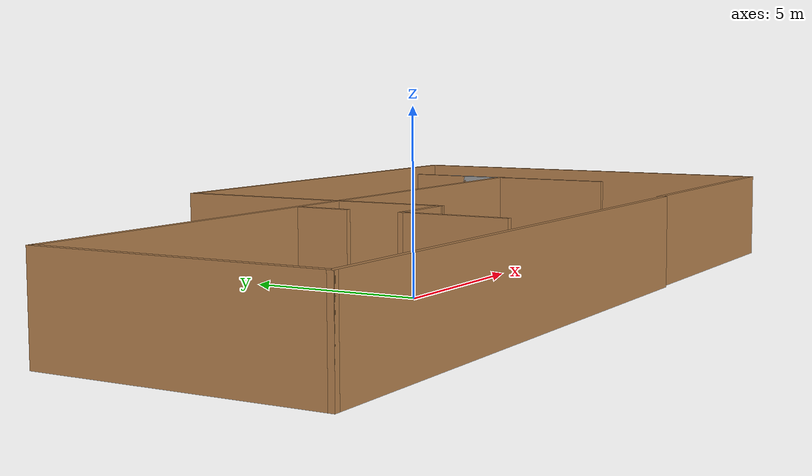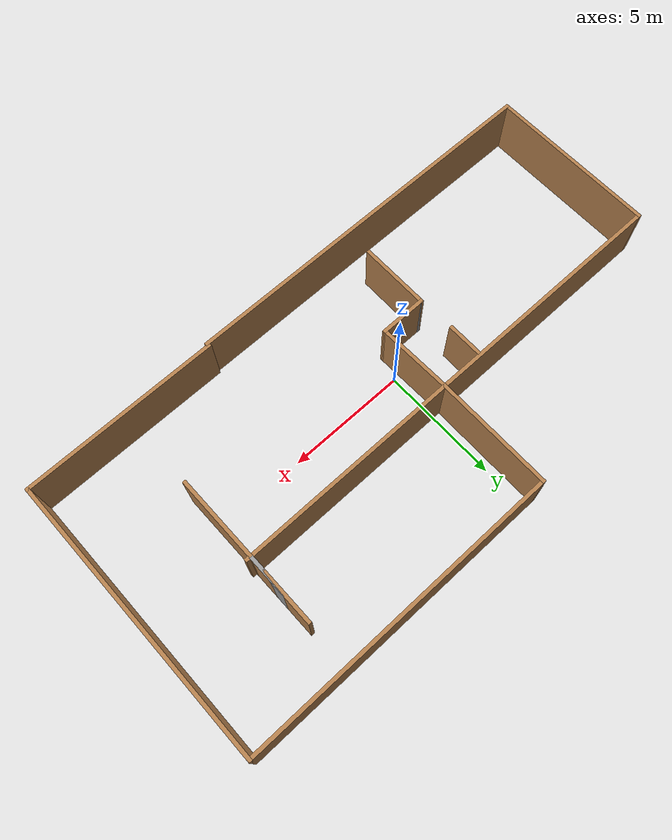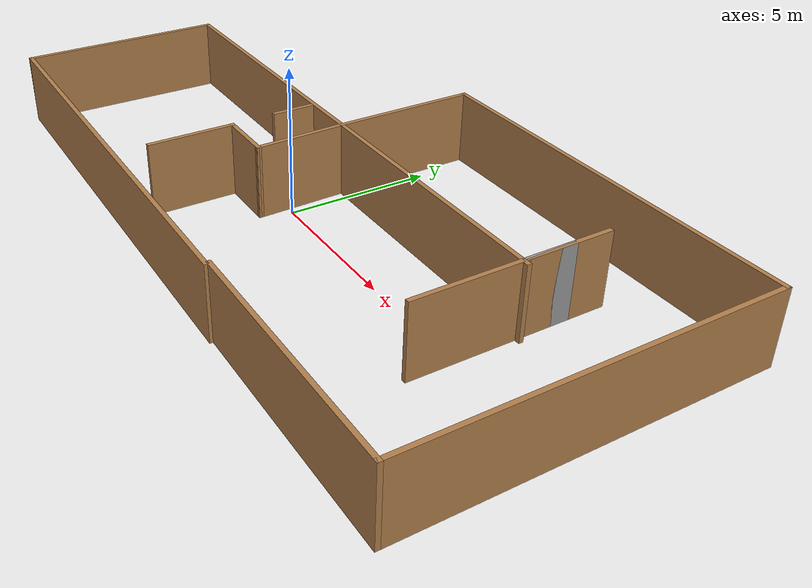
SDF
<?xml version='1.0'?>
<sdf version='1.6'>
  <model name='Hotel'>
    <pose frame=''>0.97585 0.9469 0 0 -0 0</pose>
    <link name='Wall_1'>
      <collision name='Wall_1_Collision'>
        <geometry>
          <box>
            <size>16 0.15 2.5</size>
          </box>
        </geometry>
        <pose frame=''>0 0 1.25 0 -0 0</pose>
      </collision>
      <visual name='Wall_1_Visual'>
        <pose frame=''>0 0 1.25 0 -0 0</pose>
        <geometry>
          <box>
            <size>16 0.15 2.5</size>
          </box>
        </geometry>
        <material>
          <script>
            <uri>file://media/materials/scripts/gazebo.material</uri>
            <name>Gazebo/Wood</name>
          </script>
          <ambient>1 1 1 1</ambient>
        </material>
        <meta>
          <layer>0</layer>
        </meta>
      </visual>
      <pose frame=''>-4.05 -5.975 0 0 -0 0</pose>
    </link>
    <link name='Wall_11'>
      <collision name='Wall_11_Collision'>
        <geometry>
          <box>
            <size>1.5 0.15 2.5</size>
          </box>
        </geometry>
        <pose frame=''>0 0 1.25 0 -0 0</pose>
      </collision>
      <visual name='Wall_11_Visual'>
        <pose frame=''>0 0 1.25 0 -0 0</pose>
        <geometry>
          <box>
            <size>1.5 0.15 2.5</size>
          </box>
        </geometry>
        <material>
          <script>
            <uri>file://media/materials/scripts/gazebo.material</uri>
            <name>Gazebo/Wood</name>
          </script>
          <ambient>1 1 1 1</ambient>
        </material>
        <meta>
          <layer>0</layer>
        </meta>
      </visual>
      <pose frame=''>-3.20587 0.323094 0 0 -0 1.5708</pose>
    </link>
    <link name='Wall_13'>
      <collision name='Wall_13_Collision'>
        <geometry>
          <box>
            <size>2 0.15 2.5</size>
          </box>
        </geometry>
        <pose frame=''>0 0 1.25 0 -0 0</pose>
      </collision>
      <visual name='Wall_13_Visual'>
        <pose frame=''>0 0 1.25 0 -0 0</pose>
        <geometry>
          <box>
            <size>2 0.15 2.5</size>
          </box>
        </geometry>
        <material>
          <script>
            <uri>file://media/materials/scripts/gazebo.material</uri>
            <name>Gazebo/Wood</name>
          </script>
          <ambient>1 1 1 1</ambient>
        </material>
        <meta>
          <layer>0</layer>
        </meta>
      </visual>
      <pose frame=''>-2.21481 -1.925 0 0 -0 0</pose>
    </link>
    <link name='Wall_14'>
      <collision name='Wall_14_Collision'>
        <geometry>
          <box>
            <size>3.20119 0.15 2.5</size>
          </box>
        </geometry>
        <pose frame=''>0 0 1.25 0 -0 0</pose>
      </collision>
      <visual name='Wall_14_Visual'>
        <pose frame=''>0 0 1.25 0 -0 0</pose>
        <geometry>
          <box>
            <size>3.20119 0.15 2.5</size>
          </box>
        </geometry>
        <material>
          <script>
            <uri>file://media/materials/scripts/gazebo.material</uri>
            <name>Gazebo/Wood</name>
          </script>
          <ambient>1 1 1 1</ambient>
        </material>
        <meta>
          <layer>0</layer>
        </meta>
      </visual>
      <pose frame=''>-1.3324 -0.4 0 0 -0 1.59872</pose>
    </link>
    <link name='Wall_17'>
      <collision name='Wall_17_Collision'>
        <geometry>
          <box>
            <size>3 0.15 2.5</size>
          </box>
        </geometry>
        <pose frame=''>0 0 1.25 0 -0 0</pose>
      </collision>
      <visual name='Wall_17_Visual'>
        <pose frame=''>0 0 1.25 0 -0 0</pose>
        <geometry>
          <box>
            <size>3 0.15 2.5</size>
          </box>
        </geometry>
        <material>
          <script>
            <uri>file://media/materials/scripts/gazebo.material</uri>
            <name>Gazebo/Wood</name>
          </script>
          <ambient>1 1 1 1</ambient>
        </material>
        <meta>
          <layer>0</layer>
        </meta>
      </visual>
      <pose frame=''>-3.1398 -3.35 0 0 -0 -1.5708</pose>
    </link>
    <link name='Wall_19'>
      <collision name='Wall_19_Collision'>
        <geometry>
          <box>
            <size>9.5 0.15 2.5</size>
          </box>
        </geometry>
        <pose frame=''>0 0 1.25 0 -0 0</pose>
      </collision>
      <visual name='Wall_19_Visual'>
        <pose frame=''>0 0 1.25 0 -0 0</pose>
        <geometry>
          <box>
            <size>9.5 0.15 2.5</size>
          </box>
        </geometry>
        <material>
          <script>
            <uri>file://media/materials/scripts/gazebo.material</uri>
            <name>Gazebo/Wood</name>
          </script>
          <ambient>1 1 1 1</ambient>
        </material>
        <meta>
          <layer>0</layer>
        </meta>
      </visual>
      <pose frame=''>3.3 1.125 0 0 -0 0</pose>
    </link>
    <link name='Wall_21'>
      <collision name='Wall_21_Collision'>
        <geometry>
          <box>
            <size>1.75 0.15 2.5</size>
          </box>
        </geometry>
        <pose frame=''>0 0 1.25 0 -0 0</pose>
      </collision>
      <visual name='Wall_21_Visual'>
        <pose frame=''>0 0 1.25 0 -0 0</pose>
        <geometry>
          <box>
            <size>1.75 0.15 2.5</size>
          </box>
        </geometry>
        <material>
          <script>
            <uri>file://media/materials/scripts/gazebo.material</uri>
            <name>Gazebo/Grey</name>
          </script>
          <ambient>1 1 1 1</ambient>
        </material>
        <meta>
          <layer>0</layer>
        </meta>
      </visual>
      <pose frame=''>7.80742 2.02222 0 0 -0 -1.5708</pose>
    </link>
    <link name='Wall_22'>
      <collision name='Wall_22_Collision'>
        <geometry>
          <box>
            <size>3 0.15 2.5</size>
          </box>
        </geometry>
        <pose frame=''>0 0 1.25 0 -0 0</pose>
      </collision>
      <visual name='Wall_22_Visual'>
        <pose frame=''>0 0 1.25 0 -0 0</pose>
        <geometry>
          <box>
            <size>3 0.15 2.5</size>
          </box>
        </geometry>
        <material>
          <script>
            <uri>file://media/materials/scripts/gazebo.material</uri>
            <name>Gazebo/Wood</name>
          </script>
          <ambient>1 1 1 1</ambient>
        </material>
        <meta>
          <layer>0</layer>
        </meta>
      </visual>
      <pose frame=''>7.80742 2.64722 0 0 -0 1.5708</pose>
    </link>
    <link name='Wall_24'>
      <collision name='Wall_24_Collision'>
        <geometry>
          <box>
            <size>3.75 0.15 2.5</size>
          </box>
        </geometry>
        <pose frame=''>0 0 1.25 0 -0 0</pose>
      </collision>
      <visual name='Wall_24_Visual'>
        <pose frame=''>0 0 1.25 0 -0 0</pose>
        <geometry>
          <box>
            <size>3.75 0.15 2.5</size>
          </box>
        </geometry>
        <material>
          <script>
            <uri>file://media/materials/scripts/gazebo.material</uri>
            <name>Gazebo/Wood</name>
          </script>
          <ambient>1 1 1 1</ambient>
        </material>
        <meta>
          <layer>0</layer>
        </meta>
      </visual>
      <pose frame=''>7.80742 -0.577777 0 0 -0 -1.5708</pose>
    </link>
    <link name='Wall_3'>
      <collision name='Wall_3_Collision'>
        <geometry>
          <box>
            <size>0.16 0.15 2.5</size>
          </box>
        </geometry>
        <pose frame=''>0 0 1.25 0 -0 0</pose>
      </collision>
      <visual name='Wall_3_Visual'>
        <pose frame=''>0 0 1.25 0 -0 0</pose>
        <geometry>
          <box>
            <size>0.16 0.15 2.5</size>
          </box>
        </geometry>
        <material>
          <script>
            <uri>file://media/materials/scripts/gazebo.material</uri>
            <name>Gazebo/Grey</name>
          </script>
          <ambient>0 0 0 1</ambient>
        </material>
        <meta>
          <layer>0</layer>
        </meta>
      </visual>
      <pose frame=''>-3.13481 -1.925 0 0 -0 0</pose>
    </link>
    <link name='Wall_4'>
      <collision name='Wall_4_Collision'>
        <geometry>
          <box>
            <size>7.25 0.15 2.5</size>
          </box>
        </geometry>
        <pose frame=''>0 0 1.25 0 -0 0</pose>
      </collision>
      <visual name='Wall_4_Visual'>
        <pose frame=''>0 0 1.25 0 -0 0</pose>
        <geometry>
          <box>
            <size>7.25 0.15 2.5</size>
          </box>
        </geometry>
        <material>
          <script>
            <uri>file://media/materials/scripts/gazebo.material</uri>
            <name>Gazebo/Wood</name>
          </script>
          <ambient>1 1 1 1</ambient>
        </material>
        <meta>
          <layer>0</layer>
        </meta>
      </visual>
      <pose frame=''>-11.975 -2.425 0 0 -0 1.5708</pose>
    </link>
    <link name='Wall_5'>
      <collision name='Wall_5_Collision'>
        <geometry>
          <box>
            <size>10.75 0.15 2.5</size>
          </box>
        </geometry>
        <pose frame=''>0 0 1.25 0 -0 0</pose>
      </collision>
      <visual name='Wall_5_Visual'>
        <pose frame=''>0 0 1.25 0 -0 0</pose>
        <geometry>
          <box>
            <size>10.75 0.15 2.5</size>
          </box>
        </geometry>
        <material>
          <script>
            <uri>file://media/materials/scripts/gazebo.material</uri>
            <name>Gazebo/Wood</name>
          </script>
          <ambient>1 1 1 1</ambient>
        </material>
        <meta>
          <layer>0</layer>
        </meta>
      </visual>
      <pose frame=''>-6.675 1.125 0 0 -0 0</pose>
    </link>
    <link name='Wall_6'>
      <collision name='Wall_6_Collision'>
        <geometry>
          <box>
            <size>5 0.15 2.5</size>
          </box>
        </geometry>
        <pose frame=''>0 0 1.25 0 -0 0</pose>
      </collision>
      <visual name='Wall_6_Visual'>
        <pose frame=''>0 0 1.25 0 -0 0</pose>
        <geometry>
          <box>
            <size>5 0.15 2.5</size>
          </box>
        </geometry>
        <material>
          <script>
            <uri>file://media/materials/scripts/gazebo.material</uri>
            <name>Gazebo/Wood</name>
          </script>
          <ambient>1 1 1 1</ambient>
        </material>
        <meta>
          <layer>0</layer>
        </meta>
      </visual>
      <pose frame=''>-1.375 3.55 0 0 -0 1.5708</pose>
    </link>
    <link name='Wall_7'>
      <collision name='Wall_7_Collision'>
        <geometry>
          <box>
            <size>13.5 0.15 2.5</size>
          </box>
        </geometry>
        <pose frame=''>0 0 1.25 0 -0 0</pose>
      </collision>
      <visual name='Wall_7_Visual'>
        <pose frame=''>0 0 1.25 0 -0 0</pose>
        <geometry>
          <box>
            <size>13.5 0.15 2.5</size>
          </box>
        </geometry>
        <material>
          <script>
            <uri>file://media/materials/scripts/gazebo.material</uri>
            <name>Gazebo/Wood</name>
          </script>
          <ambient>1 1 1 1</ambient>
        </material>
        <meta>
          <layer>0</layer>
        </meta>
      </visual>
      <pose frame=''>5.3 5.975 0 0 -0 0</pose>
    </link>
    <link name='Wall_8'>
      <collision name='Wall_8_Collision'>
        <geometry>
          <box>
            <size>12 0.15 2.5</size>
          </box>
        </geometry>
        <pose frame=''>0 0 1.25 0 -0 0</pose>
      </collision>
      <visual name='Wall_8_Visual'>
        <pose frame=''>0 0 1.25 0 -0 0</pose>
        <geometry>
          <box>
            <size>12 0.15 2.5</size>
          </box>
        </geometry>
        <material>
          <script>
            <uri>file://media/materials/scripts/gazebo.material</uri>
            <name>Gazebo/Wood</name>
          </script>
          <ambient>1 1 1 1</ambient>
        </material>
        <meta>
          <layer>0</layer>
        </meta>
      </visual>
      <pose frame=''>11.975 0.05 0 0 -0 -1.5708</pose>
    </link>
    <link name='Wall_9'>
      <collision name='Wall_9_Collision'>
        <geometry>
          <box>
            <size>8.25 0.15 2.5</size>
          </box>
        </geometry>
        <pose frame=''>0 0 1.25 0 -0 0</pose>
      </collision>
      <visual name='Wall_9_Visual'>
        <pose frame=''>0 0 1.25 0 -0 0</pose>
        <geometry>
          <box>
            <size>8.25 0.15 2.5</size>
          </box>
        </geometry>
        <material>
          <script>
            <uri>file://media/materials/scripts/gazebo.material</uri>
            <name>Gazebo/Wood</name>
          </script>
          <ambient>1 1 1 1</ambient>
        </material>
        <meta>
          <layer>0</layer>
        </meta>
      </visual>
      <pose frame=''>7.925 -5.875 0 0 -0 3.14159</pose>
    </link>
    <static>1</static>
  </model>
</sdf>
